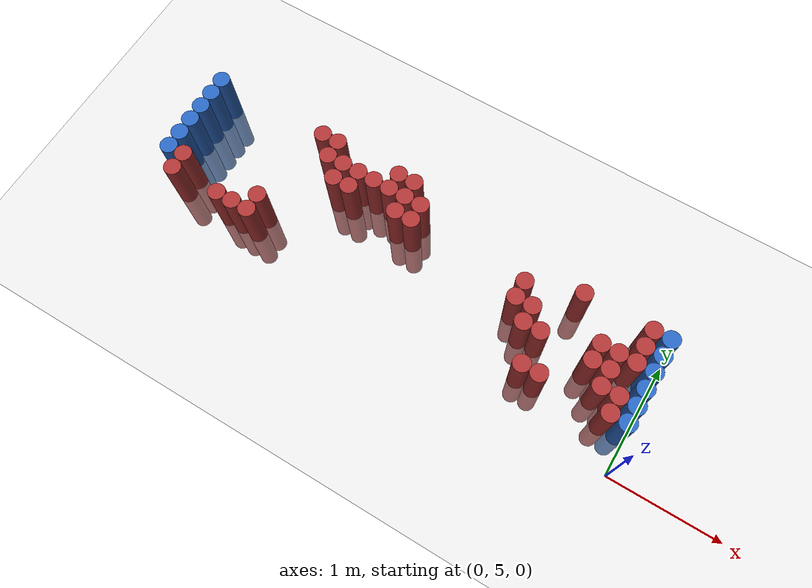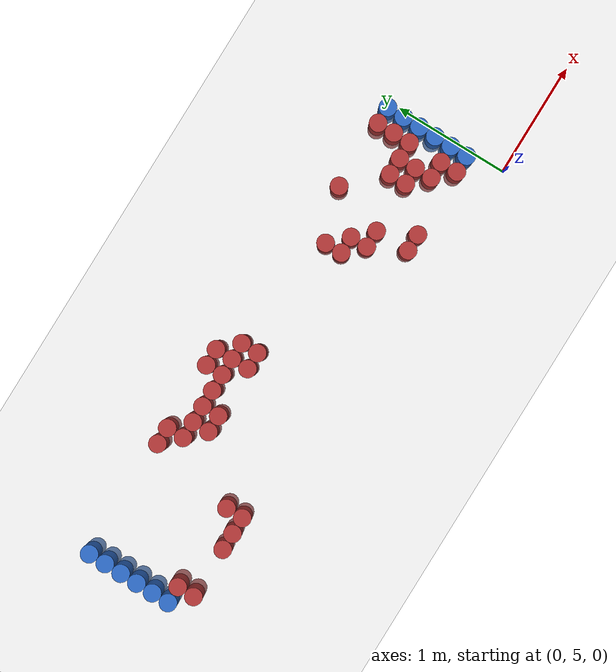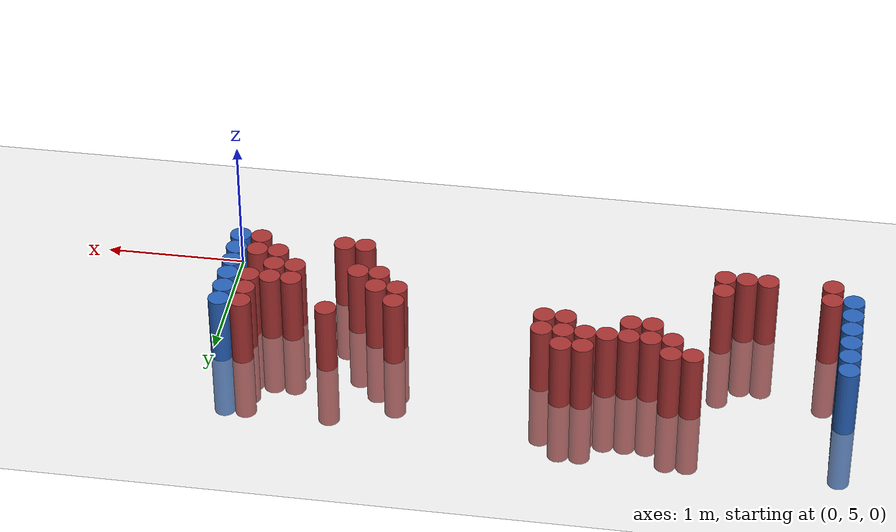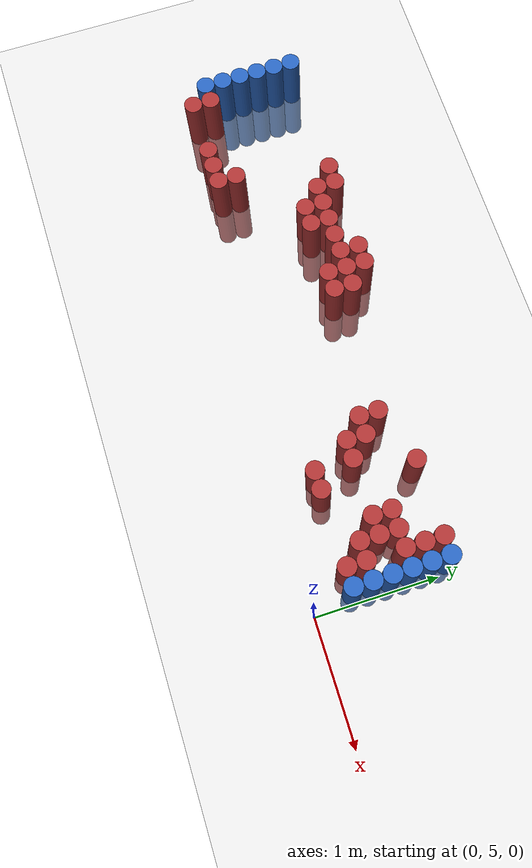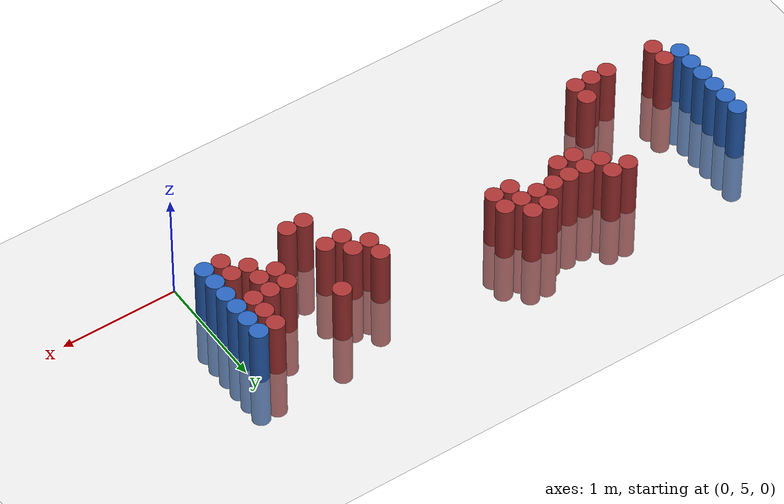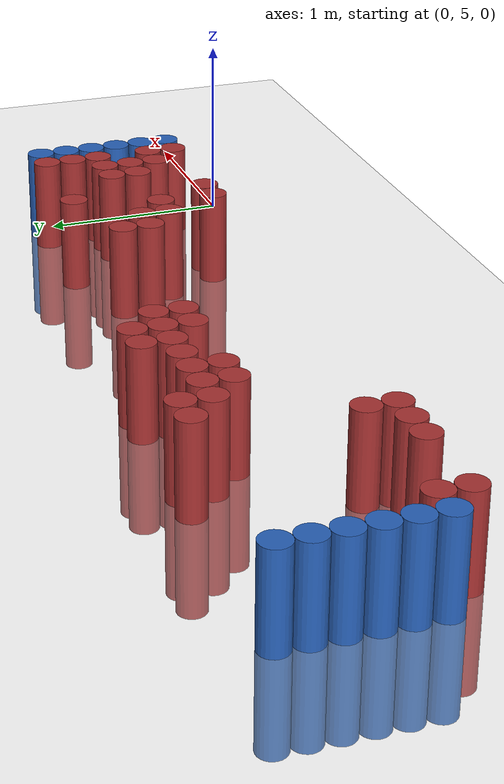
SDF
<sdf version="1.6">
 <world name="default">
  <model name="ground_plane">
   <static>1</static>
   <link name="link">
    <collision name="collision">
     <geometry><plane><normal>0 0 1</normal><size>100 100</size></plane></geometry>
     <surface><friction><ode><mu>100</mu><mu2>50</mu2></ode></friction></surface>
    </collision>
    <visual name="visual">
     <cast_shadows>0</cast_shadows>
     <geometry><plane><normal>0 0 1</normal><size>100 100</size></plane></geometry>
     <material>
      <script><uri>file://media/materials/scripts/gazebo.material</uri><name>Gazebo/Grey</name></script>
     </material>
    </visual>
   </link>
  </model>
  <model name="unit_cylinder_98">
   <static>1</static>
   <pose>-4.425000 5.475000 0.000000 0.000000 0.000000 0.000000</pose>
   <link name="link">
    <inertial>
     <mass>1</mass>
     <inertia><ixx>0.145833</ixx><ixy>0</ixy><ixz>0</ixz><iyy>0.145833</iyy><iyz>0</iyz><izz>0.125</izz></inertia>
    </inertial>
    <collision name="collision">
     <geometry><cylinder><radius>0.075000</radius><length>1</length></cylinder></geometry>
    </collision>
    <visual name="visual">
     <geometry><cylinder><radius>0.075000</radius><length>1</length></cylinder></geometry>
     <material>
      <ambient>0.152000 0.379000 0.720000 1</ambient>
      <diffuse>0.152000 0.379000 0.720000 1</diffuse>
     </material>
     <material>
      <script><name>Gazebo/Grey</name><uri>file://media/materials/scripts/gazebo.material</uri></script>
     </material>
    </visual>
   </link>
  </model>
  <model name="unit_cylinder_99">
   <static>1</static>
   <pose>-4.425000 5.625000 0.000000 0.000000 0.000000 0.000000</pose>
   <link name="link">
    <inertial>
     <mass>1</mass>
     <inertia><ixx>0.145833</ixx><ixy>0</ixy><ixz>0</ixz><iyy>0.145833</iyy><iyz>0</iyz><izz>0.125</izz></inertia>
    </inertial>
    <collision name="collision">
     <geometry><cylinder><radius>0.075000</radius><length>1</length></cylinder></geometry>
    </collision>
    <visual name="visual">
     <geometry><cylinder><radius>0.075000</radius><length>1</length></cylinder></geometry>
     <material>
      <ambient>0.152000 0.379000 0.720000 1</ambient>
      <diffuse>0.152000 0.379000 0.720000 1</diffuse>
     </material>
     <material>
      <script><name>Gazebo/Grey</name><uri>file://media/materials/scripts/gazebo.material</uri></script>
     </material>
    </visual>
   </link>
  </model>
  <model name="unit_cylinder_100">
   <static>1</static>
   <pose>-4.425000 5.775000 0.000000 0.000000 0.000000 0.000000</pose>
   <link name="link">
    <inertial>
     <mass>1</mass>
     <inertia><ixx>0.145833</ixx><ixy>0</ixy><ixz>0</ixz><iyy>0.145833</iyy><iyz>0</iyz><izz>0.125</izz></inertia>
    </inertial>
    <collision name="collision">
     <geometry><cylinder><radius>0.075000</radius><length>1</length></cylinder></geometry>
    </collision>
    <visual name="visual">
     <geometry><cylinder><radius>0.075000</radius><length>1</length></cylinder></geometry>
     <material>
      <ambient>0.152000 0.379000 0.720000 1</ambient>
      <diffuse>0.152000 0.379000 0.720000 1</diffuse>
     </material>
     <material>
      <script><name>Gazebo/Grey</name><uri>file://media/materials/scripts/gazebo.material</uri></script>
     </material>
    </visual>
   </link>
  </model>
  <model name="unit_cylinder_101">
   <static>1</static>
   <pose>-4.425000 5.925000 0.000000 0.000000 0.000000 0.000000</pose>
   <link name="link">
    <inertial>
     <mass>1</mass>
     <inertia><ixx>0.145833</ixx><ixy>0</ixy><ixz>0</ixz><iyy>0.145833</iyy><iyz>0</iyz><izz>0.125</izz></inertia>
    </inertial>
    <collision name="collision">
     <geometry><cylinder><radius>0.075000</radius><length>1</length></cylinder></geometry>
    </collision>
    <visual name="visual">
     <geometry><cylinder><radius>0.075000</radius><length>1</length></cylinder></geometry>
     <material>
      <ambient>0.152000 0.379000 0.720000 1</ambient>
      <diffuse>0.152000 0.379000 0.720000 1</diffuse>
     </material>
     <material>
      <script><name>Gazebo/Grey</name><uri>file://media/materials/scripts/gazebo.material</uri></script>
     </material>
    </visual>
   </link>
  </model>
  <model name="unit_cylinder_102">
   <static>1</static>
   <pose>-4.425000 6.075000 0.000000 0.000000 0.000000 0.000000</pose>
   <link name="link">
    <inertial>
     <mass>1</mass>
     <inertia><ixx>0.145833</ixx><ixy>0</ixy><ixz>0</ixz><iyy>0.145833</iyy><iyz>0</iyz><izz>0.125</izz></inertia>
    </inertial>
    <collision name="collision">
     <geometry><cylinder><radius>0.075000</radius><length>1</length></cylinder></geometry>
    </collision>
    <visual name="visual">
     <geometry><cylinder><radius>0.075000</radius><length>1</length></cylinder></geometry>
     <material>
      <ambient>0.152000 0.379000 0.720000 1</ambient>
      <diffuse>0.152000 0.379000 0.720000 1</diffuse>
     </material>
     <material>
      <script><name>Gazebo/Grey</name><uri>file://media/materials/scripts/gazebo.material</uri></script>
     </material>
    </visual>
   </link>
  </model>
  <model name="unit_cylinder_103">
   <static>1</static>
   <pose>-4.425000 6.225000 0.000000 0.000000 0.000000 0.000000</pose>
   <link name="link">
    <inertial>
     <mass>1</mass>
     <inertia><ixx>0.145833</ixx><ixy>0</ixy><ixz>0</ixz><iyy>0.145833</iyy><iyz>0</iyz><izz>0.125</izz></inertia>
    </inertial>
    <collision name="collision">
     <geometry><cylinder><radius>0.075000</radius><length>1</length></cylinder></geometry>
    </collision>
    <visual name="visual">
     <geometry><cylinder><radius>0.075000</radius><length>1</length></cylinder></geometry>
     <material>
      <ambient>0.152000 0.379000 0.720000 1</ambient>
      <diffuse>0.152000 0.379000 0.720000 1</diffuse>
     </material>
     <material>
      <script><name>Gazebo/Grey</name><uri>file://media/materials/scripts/gazebo.material</uri></script>
     </material>
    </visual>
   </link>
  </model>
  <model name="unit_cylinder_127">
   <static>1</static>
   <pose>-4.275000 5.325000 0.000000 0.000000 0.000000 0.000000</pose>
   <link name="link">
    <inertial>
     <mass>1</mass>
     <inertia><ixx>0.145833</ixx><ixy>0</ixy><ixz>0</ixz><iyy>0.145833</iyy><iyz>0</iyz><izz>0.125</izz></inertia>
    </inertial>
    <collision name="collision">
     <geometry><cylinder><radius>0.075000</radius><length>1</length></cylinder></geometry>
    </collision>
    <visual name="visual">
     <geometry><cylinder><radius>0.075000</radius><length>1</length></cylinder></geometry>
     <material>
      <ambient>0.648000 0.192000 0.192000 1</ambient>
      <diffuse>0.648000 0.192000 0.192000 1</diffuse>
     </material>
     <material>
      <script><name>Gazebo/Grey</name><uri>file://media/materials/scripts/gazebo.material</uri></script>
     </material>
    </visual>
   </link>
  </model>
  <model name="unit_cylinder_128">
   <static>1</static>
   <pose>-4.275000 5.475000 0.000000 0.000000 0.000000 0.000000</pose>
   <link name="link">
    <inertial>
     <mass>1</mass>
     <inertia><ixx>0.145833</ixx><ixy>0</ixy><ixz>0</ixz><iyy>0.145833</iyy><iyz>0</iyz><izz>0.125</izz></inertia>
    </inertial>
    <collision name="collision">
     <geometry><cylinder><radius>0.075000</radius><length>1</length></cylinder></geometry>
    </collision>
    <visual name="visual">
     <geometry><cylinder><radius>0.075000</radius><length>1</length></cylinder></geometry>
     <material>
      <ambient>0.648000 0.192000 0.192000 1</ambient>
      <diffuse>0.648000 0.192000 0.192000 1</diffuse>
     </material>
     <material>
      <script><name>Gazebo/Grey</name><uri>file://media/materials/scripts/gazebo.material</uri></script>
     </material>
    </visual>
   </link>
  </model>
  <model name="unit_cylinder_156">
   <static>1</static>
   <pose>-3.825000 5.325000 0.000000 0.000000 0.000000 0.000000</pose>
   <link name="link">
    <inertial>
     <mass>1</mass>
     <inertia><ixx>0.145833</ixx><ixy>0</ixy><ixz>0</ixz><iyy>0.145833</iyy><iyz>0</iyz><izz>0.125</izz></inertia>
    </inertial>
    <collision name="collision">
     <geometry><cylinder><radius>0.075000</radius><length>1</length></cylinder></geometry>
    </collision>
    <visual name="visual">
     <geometry><cylinder><radius>0.075000</radius><length>1</length></cylinder></geometry>
     <material>
      <ambient>0.648000 0.192000 0.192000 1</ambient>
      <diffuse>0.648000 0.192000 0.192000 1</diffuse>
     </material>
     <material>
      <script><name>Gazebo/Grey</name><uri>file://media/materials/scripts/gazebo.material</uri></script>
     </material>
    </visual>
   </link>
  </model>
  <model name="unit_cylinder_164">
   <static>1</static>
   <pose>-3.675000 5.325000 0.000000 0.000000 0.000000 0.000000</pose>
   <link name="link">
    <inertial>
     <mass>1</mass>
     <inertia><ixx>0.145833</ixx><ixy>0</ixy><ixz>0</ixz><iyy>0.145833</iyy><iyz>0</iyz><izz>0.125</izz></inertia>
    </inertial>
    <collision name="collision">
     <geometry><cylinder><radius>0.075000</radius><length>1</length></cylinder></geometry>
    </collision>
    <visual name="visual">
     <geometry><cylinder><radius>0.075000</radius><length>1</length></cylinder></geometry>
     <material>
      <ambient>0.648000 0.192000 0.192000 1</ambient>
      <diffuse>0.648000 0.192000 0.192000 1</diffuse>
     </material>
     <material>
      <script><name>Gazebo/Grey</name><uri>file://media/materials/scripts/gazebo.material</uri></script>
     </material>
    </visual>
   </link>
  </model>
  <model name="unit_cylinder_167">
   <static>1</static>
   <pose>-3.525000 5.325000 0.000000 0.000000 0.000000 0.000000</pose>
   <link name="link">
    <inertial>
     <mass>1</mass>
     <inertia><ixx>0.145833</ixx><ixy>0</ixy><ixz>0</ixz><iyy>0.145833</iyy><iyz>0</iyz><izz>0.125</izz></inertia>
    </inertial>
    <collision name="collision">
     <geometry><cylinder><radius>0.075000</radius><length>1</length></cylinder></geometry>
    </collision>
    <visual name="visual">
     <geometry><cylinder><radius>0.075000</radius><length>1</length></cylinder></geometry>
     <material>
      <ambient>0.648000 0.192000 0.192000 1</ambient>
      <diffuse>0.648000 0.192000 0.192000 1</diffuse>
     </material>
     <material>
      <script><name>Gazebo/Grey</name><uri>file://media/materials/scripts/gazebo.material</uri></script>
     </material>
    </visual>
   </link>
  </model>
  <model name="unit_cylinder_168">
   <static>1</static>
   <pose>-3.525000 5.475000 0.000000 0.000000 0.000000 0.000000</pose>
   <link name="link">
    <inertial>
     <mass>1</mass>
     <inertia><ixx>0.145833</ixx><ixy>0</ixy><ixz>0</ixz><iyy>0.145833</iyy><iyz>0</iyz><izz>0.125</izz></inertia>
    </inertial>
    <collision name="collision">
     <geometry><cylinder><radius>0.075000</radius><length>1</length></cylinder></geometry>
    </collision>
    <visual name="visual">
     <geometry><cylinder><radius>0.075000</radius><length>1</length></cylinder></geometry>
     <material>
      <ambient>0.648000 0.192000 0.192000 1</ambient>
      <diffuse>0.648000 0.192000 0.192000 1</diffuse>
     </material>
     <material>
      <script><name>Gazebo/Grey</name><uri>file://media/materials/scripts/gazebo.material</uri></script>
     </material>
    </visual>
   </link>
  </model>
  <model name="unit_cylinder_182">
   <static>1</static>
   <pose>-3.375000 6.225000 0.000000 0.000000 0.000000 0.000000</pose>
   <link name="link">
    <inertial>
     <mass>1</mass>
     <inertia><ixx>0.145833</ixx><ixy>0</ixy><ixz>0</ixz><iyy>0.145833</iyy><iyz>0</iyz><izz>0.125</izz></inertia>
    </inertial>
    <collision name="collision">
     <geometry><cylinder><radius>0.075000</radius><length>1</length></cylinder></geometry>
    </collision>
    <visual name="visual">
     <geometry><cylinder><radius>0.075000</radius><length>1</length></cylinder></geometry>
     <material>
      <ambient>0.648000 0.192000 0.192000 1</ambient>
      <diffuse>0.648000 0.192000 0.192000 1</diffuse>
     </material>
     <material>
      <script><name>Gazebo/Grey</name><uri>file://media/materials/scripts/gazebo.material</uri></script>
     </material>
    </visual>
   </link>
  </model>
  <model name="unit_cylinder_192">
   <static>1</static>
   <pose>-3.225000 6.075000 0.000000 0.000000 0.000000 0.000000</pose>
   <link name="link">
    <inertial>
     <mass>1</mass>
     <inertia><ixx>0.145833</ixx><ixy>0</ixy><ixz>0</ixz><iyy>0.145833</iyy><iyz>0</iyz><izz>0.125</izz></inertia>
    </inertial>
    <collision name="collision">
     <geometry><cylinder><radius>0.075000</radius><length>1</length></cylinder></geometry>
    </collision>
    <visual name="visual">
     <geometry><cylinder><radius>0.075000</radius><length>1</length></cylinder></geometry>
     <material>
      <ambient>0.648000 0.192000 0.192000 1</ambient>
      <diffuse>0.648000 0.192000 0.192000 1</diffuse>
     </material>
     <material>
      <script><name>Gazebo/Grey</name><uri>file://media/materials/scripts/gazebo.material</uri></script>
     </material>
    </visual>
   </link>
  </model>
  <model name="unit_cylinder_193">
   <static>1</static>
   <pose>-3.225000 6.225000 0.000000 0.000000 0.000000 0.000000</pose>
   <link name="link">
    <inertial>
     <mass>1</mass>
     <inertia><ixx>0.145833</ixx><ixy>0</ixy><ixz>0</ixz><iyy>0.145833</iyy><iyz>0</iyz><izz>0.125</izz></inertia>
    </inertial>
    <collision name="collision">
     <geometry><cylinder><radius>0.075000</radius><length>1</length></cylinder></geometry>
    </collision>
    <visual name="visual">
     <geometry><cylinder><radius>0.075000</radius><length>1</length></cylinder></geometry>
     <material>
      <ambient>0.648000 0.192000 0.192000 1</ambient>
      <diffuse>0.648000 0.192000 0.192000 1</diffuse>
     </material>
     <material>
      <script><name>Gazebo/Grey</name><uri>file://media/materials/scripts/gazebo.material</uri></script>
     </material>
    </visual>
   </link>
  </model>
  <model name="unit_cylinder_196">
   <static>1</static>
   <pose>-3.075000 5.925000 0.000000 0.000000 0.000000 0.000000</pose>
   <link name="link">
    <inertial>
     <mass>1</mass>
     <inertia><ixx>0.145833</ixx><ixy>0</ixy><ixz>0</ixz><iyy>0.145833</iyy><iyz>0</iyz><izz>0.125</izz></inertia>
    </inertial>
    <collision name="collision">
     <geometry><cylinder><radius>0.075000</radius><length>1</length></cylinder></geometry>
    </collision>
    <visual name="visual">
     <geometry><cylinder><radius>0.075000</radius><length>1</length></cylinder></geometry>
     <material>
      <ambient>0.648000 0.192000 0.192000 1</ambient>
      <diffuse>0.648000 0.192000 0.192000 1</diffuse>
     </material>
     <material>
      <script><name>Gazebo/Grey</name><uri>file://media/materials/scripts/gazebo.material</uri></script>
     </material>
    </visual>
   </link>
  </model>
  <model name="unit_cylinder_197">
   <static>1</static>
   <pose>-3.075000 6.075000 0.000000 0.000000 0.000000 0.000000</pose>
   <link name="link">
    <inertial>
     <mass>1</mass>
     <inertia><ixx>0.145833</ixx><ixy>0</ixy><ixz>0</ixz><iyy>0.145833</iyy><iyz>0</iyz><izz>0.125</izz></inertia>
    </inertial>
    <collision name="collision">
     <geometry><cylinder><radius>0.075000</radius><length>1</length></cylinder></geometry>
    </collision>
    <visual name="visual">
     <geometry><cylinder><radius>0.075000</radius><length>1</length></cylinder></geometry>
     <material>
      <ambient>0.648000 0.192000 0.192000 1</ambient>
      <diffuse>0.648000 0.192000 0.192000 1</diffuse>
     </material>
     <material>
      <script><name>Gazebo/Grey</name><uri>file://media/materials/scripts/gazebo.material</uri></script>
     </material>
    </visual>
   </link>
  </model>
  <model name="unit_cylinder_204">
   <static>1</static>
   <pose>-2.925000 5.925000 0.000000 0.000000 0.000000 0.000000</pose>
   <link name="link">
    <inertial>
     <mass>1</mass>
     <inertia><ixx>0.145833</ixx><ixy>0</ixy><ixz>0</ixz><iyy>0.145833</iyy><iyz>0</iyz><izz>0.125</izz></inertia>
    </inertial>
    <collision name="collision">
     <geometry><cylinder><radius>0.075000</radius><length>1</length></cylinder></geometry>
    </collision>
    <visual name="visual">
     <geometry><cylinder><radius>0.075000</radius><length>1</length></cylinder></geometry>
     <material>
      <ambient>0.648000 0.192000 0.192000 1</ambient>
      <diffuse>0.648000 0.192000 0.192000 1</diffuse>
     </material>
     <material>
      <script><name>Gazebo/Grey</name><uri>file://media/materials/scripts/gazebo.material</uri></script>
     </material>
    </visual>
   </link>
  </model>
  <model name="unit_cylinder_205">
   <static>1</static>
   <pose>-2.925000 6.075000 0.000000 0.000000 0.000000 0.000000</pose>
   <link name="link">
    <inertial>
     <mass>1</mass>
     <inertia><ixx>0.145833</ixx><ixy>0</ixy><ixz>0</ixz><iyy>0.145833</iyy><iyz>0</iyz><izz>0.125</izz></inertia>
    </inertial>
    <collision name="collision">
     <geometry><cylinder><radius>0.075000</radius><length>1</length></cylinder></geometry>
    </collision>
    <visual name="visual">
     <geometry><cylinder><radius>0.075000</radius><length>1</length></cylinder></geometry>
     <material>
      <ambient>0.648000 0.192000 0.192000 1</ambient>
      <diffuse>0.648000 0.192000 0.192000 1</diffuse>
     </material>
     <material>
      <script><name>Gazebo/Grey</name><uri>file://media/materials/scripts/gazebo.material</uri></script>
     </material>
    </visual>
   </link>
  </model>
  <model name="unit_cylinder_216">
   <static>1</static>
   <pose>-2.775000 6.075000 0.000000 0.000000 0.000000 0.000000</pose>
   <link name="link">
    <inertial>
     <mass>1</mass>
     <inertia><ixx>0.145833</ixx><ixy>0</ixy><ixz>0</ixz><iyy>0.145833</iyy><iyz>0</iyz><izz>0.125</izz></inertia>
    </inertial>
    <collision name="collision">
     <geometry><cylinder><radius>0.075000</radius><length>1</length></cylinder></geometry>
    </collision>
    <visual name="visual">
     <geometry><cylinder><radius>0.075000</radius><length>1</length></cylinder></geometry>
     <material>
      <ambient>0.648000 0.192000 0.192000 1</ambient>
      <diffuse>0.648000 0.192000 0.192000 1</diffuse>
     </material>
     <material>
      <script><name>Gazebo/Grey</name><uri>file://media/materials/scripts/gazebo.material</uri></script>
     </material>
    </visual>
   </link>
  </model>
  <model name="unit_cylinder_226">
   <static>1</static>
   <pose>-2.625000 6.075000 0.000000 0.000000 0.000000 0.000000</pose>
   <link name="link">
    <inertial>
     <mass>1</mass>
     <inertia><ixx>0.145833</ixx><ixy>0</ixy><ixz>0</ixz><iyy>0.145833</iyy><iyz>0</iyz><izz>0.125</izz></inertia>
    </inertial>
    <collision name="collision">
     <geometry><cylinder><radius>0.075000</radius><length>1</length></cylinder></geometry>
    </collision>
    <visual name="visual">
     <geometry><cylinder><radius>0.075000</radius><length>1</length></cylinder></geometry>
     <material>
      <ambient>0.648000 0.192000 0.192000 1</ambient>
      <diffuse>0.648000 0.192000 0.192000 1</diffuse>
     </material>
     <material>
      <script><name>Gazebo/Grey</name><uri>file://media/materials/scripts/gazebo.material</uri></script>
     </material>
    </visual>
   </link>
  </model>
  <model name="unit_cylinder_227">
   <static>1</static>
   <pose>-2.625000 6.225000 0.000000 0.000000 0.000000 0.000000</pose>
   <link name="link">
    <inertial>
     <mass>1</mass>
     <inertia><ixx>0.145833</ixx><ixy>0</ixy><ixz>0</ixz><iyy>0.145833</iyy><iyz>0</iyz><izz>0.125</izz></inertia>
    </inertial>
    <collision name="collision">
     <geometry><cylinder><radius>0.075000</radius><length>1</length></cylinder></geometry>
    </collision>
    <visual name="visual">
     <geometry><cylinder><radius>0.075000</radius><length>1</length></cylinder></geometry>
     <material>
      <ambient>0.648000 0.192000 0.192000 1</ambient>
      <diffuse>0.648000 0.192000 0.192000 1</diffuse>
     </material>
     <material>
      <script><name>Gazebo/Grey</name><uri>file://media/materials/scripts/gazebo.material</uri></script>
     </material>
    </visual>
   </link>
  </model>
  <model name="unit_cylinder_232">
   <static>1</static>
   <pose>-2.475000 5.925000 0.000000 0.000000 0.000000 0.000000</pose>
   <link name="link">
    <inertial>
     <mass>1</mass>
     <inertia><ixx>0.145833</ixx><ixy>0</ixy><ixz>0</ixz><iyy>0.145833</iyy><iyz>0</iyz><izz>0.125</izz></inertia>
    </inertial>
    <collision name="collision">
     <geometry><cylinder><radius>0.075000</radius><length>1</length></cylinder></geometry>
    </collision>
    <visual name="visual">
     <geometry><cylinder><radius>0.075000</radius><length>1</length></cylinder></geometry>
     <material>
      <ambient>0.648000 0.192000 0.192000 1</ambient>
      <diffuse>0.648000 0.192000 0.192000 1</diffuse>
     </material>
     <material>
      <script><name>Gazebo/Grey</name><uri>file://media/materials/scripts/gazebo.material</uri></script>
     </material>
    </visual>
   </link>
  </model>
  <model name="unit_cylinder_233">
   <static>1</static>
   <pose>-2.475000 6.075000 0.000000 0.000000 0.000000 0.000000</pose>
   <link name="link">
    <inertial>
     <mass>1</mass>
     <inertia><ixx>0.145833</ixx><ixy>0</ixy><ixz>0</ixz><iyy>0.145833</iyy><iyz>0</iyz><izz>0.125</izz></inertia>
    </inertial>
    <collision name="collision">
     <geometry><cylinder><radius>0.075000</radius><length>1</length></cylinder></geometry>
    </collision>
    <visual name="visual">
     <geometry><cylinder><radius>0.075000</radius><length>1</length></cylinder></geometry>
     <material>
      <ambient>0.648000 0.192000 0.192000 1</ambient>
      <diffuse>0.648000 0.192000 0.192000 1</diffuse>
     </material>
     <material>
      <script><name>Gazebo/Grey</name><uri>file://media/materials/scripts/gazebo.material</uri></script>
     </material>
    </visual>
   </link>
  </model>
  <model name="unit_cylinder_234">
   <static>1</static>
   <pose>-2.475000 6.225000 0.000000 0.000000 0.000000 0.000000</pose>
   <link name="link">
    <inertial>
     <mass>1</mass>
     <inertia><ixx>0.145833</ixx><ixy>0</ixy><ixz>0</ixz><iyy>0.145833</iyy><iyz>0</iyz><izz>0.125</izz></inertia>
    </inertial>
    <collision name="collision">
     <geometry><cylinder><radius>0.075000</radius><length>1</length></cylinder></geometry>
    </collision>
    <visual name="visual">
     <geometry><cylinder><radius>0.075000</radius><length>1</length></cylinder></geometry>
     <material>
      <ambient>0.648000 0.192000 0.192000 1</ambient>
      <diffuse>0.648000 0.192000 0.192000 1</diffuse>
     </material>
     <material>
      <script><name>Gazebo/Grey</name><uri>file://media/materials/scripts/gazebo.material</uri></script>
     </material>
    </visual>
   </link>
  </model>
  <model name="unit_cylinder_239">
   <static>1</static>
   <pose>-2.325000 5.925000 0.000000 0.000000 0.000000 0.000000</pose>
   <link name="link">
    <inertial>
     <mass>1</mass>
     <inertia><ixx>0.145833</ixx><ixy>0</ixy><ixz>0</ixz><iyy>0.145833</iyy><iyz>0</iyz><izz>0.125</izz></inertia>
    </inertial>
    <collision name="collision">
     <geometry><cylinder><radius>0.075000</radius><length>1</length></cylinder></geometry>
    </collision>
    <visual name="visual">
     <geometry><cylinder><radius>0.075000</radius><length>1</length></cylinder></geometry>
     <material>
      <ambient>0.648000 0.192000 0.192000 1</ambient>
      <diffuse>0.648000 0.192000 0.192000 1</diffuse>
     </material>
     <material>
      <script><name>Gazebo/Grey</name><uri>file://media/materials/scripts/gazebo.material</uri></script>
     </material>
    </visual>
   </link>
  </model>
  <model name="unit_cylinder_240">
   <static>1</static>
   <pose>-2.325000 6.075000 0.000000 0.000000 0.000000 0.000000</pose>
   <link name="link">
    <inertial>
     <mass>1</mass>
     <inertia><ixx>0.145833</ixx><ixy>0</ixy><ixz>0</ixz><iyy>0.145833</iyy><iyz>0</iyz><izz>0.125</izz></inertia>
    </inertial>
    <collision name="collision">
     <geometry><cylinder><radius>0.075000</radius><length>1</length></cylinder></geometry>
    </collision>
    <visual name="visual">
     <geometry><cylinder><radius>0.075000</radius><length>1</length></cylinder></geometry>
     <material>
      <ambient>0.648000 0.192000 0.192000 1</ambient>
      <diffuse>0.648000 0.192000 0.192000 1</diffuse>
     </material>
     <material>
      <script><name>Gazebo/Grey</name><uri>file://media/materials/scripts/gazebo.material</uri></script>
     </material>
    </visual>
   </link>
  </model>
  <model name="unit_cylinder_248">
   <static>1</static>
   <pose>-1.275000 5.775000 0.000000 0.000000 0.000000 0.000000</pose>
   <link name="link">
    <inertial>
     <mass>1</mass>
     <inertia><ixx>0.145833</ixx><ixy>0</ixy><ixz>0</ixz><iyy>0.145833</iyy><iyz>0</iyz><izz>0.125</izz></inertia>
    </inertial>
    <collision name="collision">
     <geometry><cylinder><radius>0.075000</radius><length>1</length></cylinder></geometry>
    </collision>
    <visual name="visual">
     <geometry><cylinder><radius>0.075000</radius><length>1</length></cylinder></geometry>
     <material>
      <ambient>0.648000 0.192000 0.192000 1</ambient>
      <diffuse>0.648000 0.192000 0.192000 1</diffuse>
     </material>
     <material>
      <script><name>Gazebo/Grey</name><uri>file://media/materials/scripts/gazebo.material</uri></script>
     </material>
    </visual>
   </link>
  </model>
  <model name="unit_cylinder_249">
   <static>1</static>
   <pose>-1.275000 5.925000 0.000000 0.000000 0.000000 0.000000</pose>
   <link name="link">
    <inertial>
     <mass>1</mass>
     <inertia><ixx>0.145833</ixx><ixy>0</ixy><ixz>0</ixz><iyy>0.145833</iyy><iyz>0</iyz><izz>0.125</izz></inertia>
    </inertial>
    <collision name="collision">
     <geometry><cylinder><radius>0.075000</radius><length>1</length></cylinder></geometry>
    </collision>
    <visual name="visual">
     <geometry><cylinder><radius>0.075000</radius><length>1</length></cylinder></geometry>
     <material>
      <ambient>0.648000 0.192000 0.192000 1</ambient>
      <diffuse>0.648000 0.192000 0.192000 1</diffuse>
     </material>
     <material>
      <script><name>Gazebo/Grey</name><uri>file://media/materials/scripts/gazebo.material</uri></script>
     </material>
    </visual>
   </link>
  </model>
  <model name="unit_cylinder_260">
   <static>1</static>
   <pose>-1.125000 5.625000 0.000000 0.000000 0.000000 0.000000</pose>
   <link name="link">
    <inertial>
     <mass>1</mass>
     <inertia><ixx>0.145833</ixx><ixy>0</ixy><ixz>0</ixz><iyy>0.145833</iyy><iyz>0</iyz><izz>0.125</izz></inertia>
    </inertial>
    <collision name="collision">
     <geometry><cylinder><radius>0.075000</radius><length>1</length></cylinder></geometry>
    </collision>
    <visual name="visual">
     <geometry><cylinder><radius>0.075000</radius><length>1</length></cylinder></geometry>
     <material>
      <ambient>0.648000 0.192000 0.192000 1</ambient>
      <diffuse>0.648000 0.192000 0.192000 1</diffuse>
     </material>
     <material>
      <script><name>Gazebo/Grey</name><uri>file://media/materials/scripts/gazebo.material</uri></script>
     </material>
    </visual>
   </link>
  </model>
  <model name="unit_cylinder_261">
   <static>1</static>
   <pose>-1.125000 5.775000 0.000000 0.000000 0.000000 0.000000</pose>
   <link name="link">
    <inertial>
     <mass>1</mass>
     <inertia><ixx>0.145833</ixx><ixy>0</ixy><ixz>0</ixz><iyy>0.145833</iyy><iyz>0</iyz><izz>0.125</izz></inertia>
    </inertial>
    <collision name="collision">
     <geometry><cylinder><radius>0.075000</radius><length>1</length></cylinder></geometry>
    </collision>
    <visual name="visual">
     <geometry><cylinder><radius>0.075000</radius><length>1</length></cylinder></geometry>
     <material>
      <ambient>0.648000 0.192000 0.192000 1</ambient>
      <diffuse>0.648000 0.192000 0.192000 1</diffuse>
     </material>
     <material>
      <script><name>Gazebo/Grey</name><uri>file://media/materials/scripts/gazebo.material</uri></script>
     </material>
    </visual>
   </link>
  </model>
  <model name="unit_cylinder_270">
   <static>1</static>
   <pose>-0.975000 5.325000 0.000000 0.000000 0.000000 0.000000</pose>
   <link name="link">
    <inertial>
     <mass>1</mass>
     <inertia><ixx>0.145833</ixx><ixy>0</ixy><ixz>0</ixz><iyy>0.145833</iyy><iyz>0</iyz><izz>0.125</izz></inertia>
    </inertial>
    <collision name="collision">
     <geometry><cylinder><radius>0.075000</radius><length>1</length></cylinder></geometry>
    </collision>
    <visual name="visual">
     <geometry><cylinder><radius>0.075000</radius><length>1</length></cylinder></geometry>
     <material>
      <ambient>0.648000 0.192000 0.192000 1</ambient>
      <diffuse>0.648000 0.192000 0.192000 1</diffuse>
     </material>
     <material>
      <script><name>Gazebo/Grey</name><uri>file://media/materials/scripts/gazebo.material</uri></script>
     </material>
    </visual>
   </link>
  </model>
  <model name="unit_cylinder_271">
   <static>1</static>
   <pose>-0.975000 5.625000 0.000000 0.000000 0.000000 0.000000</pose>
   <link name="link">
    <inertial>
     <mass>1</mass>
     <inertia><ixx>0.145833</ixx><ixy>0</ixy><ixz>0</ixz><iyy>0.145833</iyy><iyz>0</iyz><izz>0.125</izz></inertia>
    </inertial>
    <collision name="collision">
     <geometry><cylinder><radius>0.075000</radius><length>1</length></cylinder></geometry>
    </collision>
    <visual name="visual">
     <geometry><cylinder><radius>0.075000</radius><length>1</length></cylinder></geometry>
     <material>
      <ambient>0.648000 0.192000 0.192000 1</ambient>
      <diffuse>0.648000 0.192000 0.192000 1</diffuse>
     </material>
     <material>
      <script><name>Gazebo/Grey</name><uri>file://media/materials/scripts/gazebo.material</uri></script>
     </material>
    </visual>
   </link>
  </model>
  <model name="unit_cylinder_280">
   <static>1</static>
   <pose>-0.825000 5.325000 0.000000 0.000000 0.000000 0.000000</pose>
   <link name="link">
    <inertial>
     <mass>1</mass>
     <inertia><ixx>0.145833</ixx><ixy>0</ixy><ixz>0</ixz><iyy>0.145833</iyy><iyz>0</iyz><izz>0.125</izz></inertia>
    </inertial>
    <collision name="collision">
     <geometry><cylinder><radius>0.075000</radius><length>1</length></cylinder></geometry>
    </collision>
    <visual name="visual">
     <geometry><cylinder><radius>0.075000</radius><length>1</length></cylinder></geometry>
     <material>
      <ambient>0.648000 0.192000 0.192000 1</ambient>
      <diffuse>0.648000 0.192000 0.192000 1</diffuse>
     </material>
     <material>
      <script><name>Gazebo/Grey</name><uri>file://media/materials/scripts/gazebo.material</uri></script>
     </material>
    </visual>
   </link>
  </model>
  <model name="unit_cylinder_281">
   <static>1</static>
   <pose>-0.825000 6.075000 0.000000 0.000000 0.000000 0.000000</pose>
   <link name="link">
    <inertial>
     <mass>1</mass>
     <inertia><ixx>0.145833</ixx><ixy>0</ixy><ixz>0</ixz><iyy>0.145833</iyy><iyz>0</iyz><izz>0.125</izz></inertia>
    </inertial>
    <collision name="collision">
     <geometry><cylinder><radius>0.075000</radius><length>1</length></cylinder></geometry>
    </collision>
    <visual name="visual">
     <geometry><cylinder><radius>0.075000</radius><length>1</length></cylinder></geometry>
     <material>
      <ambient>0.648000 0.192000 0.192000 1</ambient>
      <diffuse>0.648000 0.192000 0.192000 1</diffuse>
     </material>
     <material>
      <script><name>Gazebo/Grey</name><uri>file://media/materials/scripts/gazebo.material</uri></script>
     </material>
    </visual>
   </link>
  </model>
  <model name="unit_cylinder_290">
   <static>1</static>
   <pose>-0.525000 5.625000 0.000000 0.000000 0.000000 0.000000</pose>
   <link name="link">
    <inertial>
     <mass>1</mass>
     <inertia><ixx>0.145833</ixx><ixy>0</ixy><ixz>0</ixz><iyy>0.145833</iyy><iyz>0</iyz><izz>0.125</izz></inertia>
    </inertial>
    <collision name="collision">
     <geometry><cylinder><radius>0.075000</radius><length>1</length></cylinder></geometry>
    </collision>
    <visual name="visual">
     <geometry><cylinder><radius>0.075000</radius><length>1</length></cylinder></geometry>
     <material>
      <ambient>0.648000 0.192000 0.192000 1</ambient>
      <diffuse>0.648000 0.192000 0.192000 1</diffuse>
     </material>
     <material>
      <script><name>Gazebo/Grey</name><uri>file://media/materials/scripts/gazebo.material</uri></script>
     </material>
    </visual>
   </link>
  </model>
  <model name="unit_cylinder_291">
   <static>1</static>
   <pose>-0.525000 5.775000 0.000000 0.000000 0.000000 0.000000</pose>
   <link name="link">
    <inertial>
     <mass>1</mass>
     <inertia><ixx>0.145833</ixx><ixy>0</ixy><ixz>0</ixz><iyy>0.145833</iyy><iyz>0</iyz><izz>0.125</izz></inertia>
    </inertial>
    <collision name="collision">
     <geometry><cylinder><radius>0.075000</radius><length>1</length></cylinder></geometry>
    </collision>
    <visual name="visual">
     <geometry><cylinder><radius>0.075000</radius><length>1</length></cylinder></geometry>
     <material>
      <ambient>0.648000 0.192000 0.192000 1</ambient>
      <diffuse>0.648000 0.192000 0.192000 1</diffuse>
     </material>
     <material>
      <script><name>Gazebo/Grey</name><uri>file://media/materials/scripts/gazebo.material</uri></script>
     </material>
    </visual>
   </link>
  </model>
  <model name="unit_cylinder_297">
   <static>1</static>
   <pose>-0.375000 5.475000 0.000000 0.000000 0.000000 0.000000</pose>
   <link name="link">
    <inertial>
     <mass>1</mass>
     <inertia><ixx>0.145833</ixx><ixy>0</ixy><ixz>0</ixz><iyy>0.145833</iyy><iyz>0</iyz><izz>0.125</izz></inertia>
    </inertial>
    <collision name="collision">
     <geometry><cylinder><radius>0.075000</radius><length>1</length></cylinder></geometry>
    </collision>
    <visual name="visual">
     <geometry><cylinder><radius>0.075000</radius><length>1</length></cylinder></geometry>
     <material>
      <ambient>0.648000 0.192000 0.192000 1</ambient>
      <diffuse>0.648000 0.192000 0.192000 1</diffuse>
     </material>
     <material>
      <script><name>Gazebo/Grey</name><uri>file://media/materials/scripts/gazebo.material</uri></script>
     </material>
    </visual>
   </link>
  </model>
  <model name="unit_cylinder_298">
   <static>1</static>
   <pose>-0.375000 5.625000 0.000000 0.000000 0.000000 0.000000</pose>
   <link name="link">
    <inertial>
     <mass>1</mass>
     <inertia><ixx>0.145833</ixx><ixy>0</ixy><ixz>0</ixz><iyy>0.145833</iyy><iyz>0</iyz><izz>0.125</izz></inertia>
    </inertial>
    <collision name="collision">
     <geometry><cylinder><radius>0.075000</radius><length>1</length></cylinder></geometry>
    </collision>
    <visual name="visual">
     <geometry><cylinder><radius>0.075000</radius><length>1</length></cylinder></geometry>
     <material>
      <ambient>0.648000 0.192000 0.192000 1</ambient>
      <diffuse>0.648000 0.192000 0.192000 1</diffuse>
     </material>
     <material>
      <script><name>Gazebo/Grey</name><uri>file://media/materials/scripts/gazebo.material</uri></script>
     </material>
    </visual>
   </link>
  </model>
  <model name="unit_cylinder_299">
   <static>1</static>
   <pose>-0.375000 5.775000 0.000000 0.000000 0.000000 0.000000</pose>
   <link name="link">
    <inertial>
     <mass>1</mass>
     <inertia><ixx>0.145833</ixx><ixy>0</ixy><ixz>0</ixz><iyy>0.145833</iyy><iyz>0</iyz><izz>0.125</izz></inertia>
    </inertial>
    <collision name="collision">
     <geometry><cylinder><radius>0.075000</radius><length>1</length></cylinder></geometry>
    </collision>
    <visual name="visual">
     <geometry><cylinder><radius>0.075000</radius><length>1</length></cylinder></geometry>
     <material>
      <ambient>0.648000 0.192000 0.192000 1</ambient>
      <diffuse>0.648000 0.192000 0.192000 1</diffuse>
     </material>
     <material>
      <script><name>Gazebo/Grey</name><uri>file://media/materials/scripts/gazebo.material</uri></script>
     </material>
    </visual>
   </link>
  </model>
  <model name="unit_cylinder_313">
   <static>1</static>
   <pose>-0.225000 5.325000 0.000000 0.000000 0.000000 0.000000</pose>
   <link name="link">
    <inertial>
     <mass>1</mass>
     <inertia><ixx>0.145833</ixx><ixy>0</ixy><ixz>0</ixz><iyy>0.145833</iyy><iyz>0</iyz><izz>0.125</izz></inertia>
    </inertial>
    <collision name="collision">
     <geometry><cylinder><radius>0.075000</radius><length>1</length></cylinder></geometry>
    </collision>
    <visual name="visual">
     <geometry><cylinder><radius>0.075000</radius><length>1</length></cylinder></geometry>
     <material>
      <ambient>0.648000 0.192000 0.192000 1</ambient>
      <diffuse>0.648000 0.192000 0.192000 1</diffuse>
     </material>
     <material>
      <script><name>Gazebo/Grey</name><uri>file://media/materials/scripts/gazebo.material</uri></script>
     </material>
    </visual>
   </link>
  </model>
  <model name="unit_cylinder_314">
   <static>1</static>
   <pose>-0.225000 5.475000 0.000000 0.000000 0.000000 0.000000</pose>
   <link name="link">
    <inertial>
     <mass>1</mass>
     <inertia><ixx>0.145833</ixx><ixy>0</ixy><ixz>0</ixz><iyy>0.145833</iyy><iyz>0</iyz><izz>0.125</izz></inertia>
    </inertial>
    <collision name="collision">
     <geometry><cylinder><radius>0.075000</radius><length>1</length></cylinder></geometry>
    </collision>
    <visual name="visual">
     <geometry><cylinder><radius>0.075000</radius><length>1</length></cylinder></geometry>
     <material>
      <ambient>0.648000 0.192000 0.192000 1</ambient>
      <diffuse>0.648000 0.192000 0.192000 1</diffuse>
     </material>
     <material>
      <script><name>Gazebo/Grey</name><uri>file://media/materials/scripts/gazebo.material</uri></script>
     </material>
    </visual>
   </link>
  </model>
  <model name="unit_cylinder_315">
   <static>1</static>
   <pose>-0.225000 5.775000 0.000000 0.000000 0.000000 0.000000</pose>
   <link name="link">
    <inertial>
     <mass>1</mass>
     <inertia><ixx>0.145833</ixx><ixy>0</ixy><ixz>0</ixz><iyy>0.145833</iyy><iyz>0</iyz><izz>0.125</izz></inertia>
    </inertial>
    <collision name="collision">
     <geometry><cylinder><radius>0.075000</radius><length>1</length></cylinder></geometry>
    </collision>
    <visual name="visual">
     <geometry><cylinder><radius>0.075000</radius><length>1</length></cylinder></geometry>
     <material>
      <ambient>0.648000 0.192000 0.192000 1</ambient>
      <diffuse>0.648000 0.192000 0.192000 1</diffuse>
     </material>
     <material>
      <script><name>Gazebo/Grey</name><uri>file://media/materials/scripts/gazebo.material</uri></script>
     </material>
    </visual>
   </link>
  </model>
  <model name="unit_cylinder_316">
   <static>1</static>
   <pose>-0.225000 5.925000 0.000000 0.000000 0.000000 0.000000</pose>
   <link name="link">
    <inertial>
     <mass>1</mass>
     <inertia><ixx>0.145833</ixx><ixy>0</ixy><ixz>0</ixz><iyy>0.145833</iyy><iyz>0</iyz><izz>0.125</izz></inertia>
    </inertial>
    <collision name="collision">
     <geometry><cylinder><radius>0.075000</radius><length>1</length></cylinder></geometry>
    </collision>
    <visual name="visual">
     <geometry><cylinder><radius>0.075000</radius><length>1</length></cylinder></geometry>
     <material>
      <ambient>0.648000 0.192000 0.192000 1</ambient>
      <diffuse>0.648000 0.192000 0.192000 1</diffuse>
     </material>
     <material>
      <script><name>Gazebo/Grey</name><uri>file://media/materials/scripts/gazebo.material</uri></script>
     </material>
    </visual>
   </link>
  </model>
  <model name="unit_cylinder_317">
   <static>1</static>
   <pose>-0.225000 6.075000 0.000000 0.000000 0.000000 0.000000</pose>
   <link name="link">
    <inertial>
     <mass>1</mass>
     <inertia><ixx>0.145833</ixx><ixy>0</ixy><ixz>0</ixz><iyy>0.145833</iyy><iyz>0</iyz><izz>0.125</izz></inertia>
    </inertial>
    <collision name="collision">
     <geometry><cylinder><radius>0.075000</radius><length>1</length></cylinder></geometry>
    </collision>
    <visual name="visual">
     <geometry><cylinder><radius>0.075000</radius><length>1</length></cylinder></geometry>
     <material>
      <ambient>0.648000 0.192000 0.192000 1</ambient>
      <diffuse>0.648000 0.192000 0.192000 1</diffuse>
     </material>
     <material>
      <script><name>Gazebo/Grey</name><uri>file://media/materials/scripts/gazebo.material</uri></script>
     </material>
    </visual>
   </link>
  </model>
  <model name="unit_cylinder_332">
   <static>1</static>
   <pose>-0.075000 5.325000 0.000000 0.000000 0.000000 0.000000</pose>
   <link name="link">
    <inertial>
     <mass>1</mass>
     <inertia><ixx>0.145833</ixx><ixy>0</ixy><ixz>0</ixz><iyy>0.145833</iyy><iyz>0</iyz><izz>0.125</izz></inertia>
    </inertial>
    <collision name="collision">
     <geometry><cylinder><radius>0.075000</radius><length>1</length></cylinder></geometry>
    </collision>
    <visual name="visual">
     <geometry><cylinder><radius>0.075000</radius><length>1</length></cylinder></geometry>
     <material>
      <ambient>0.152000 0.379000 0.720000 1</ambient>
      <diffuse>0.152000 0.379000 0.720000 1</diffuse>
     </material>
     <material>
      <script><name>Gazebo/Grey</name><uri>file://media/materials/scripts/gazebo.material</uri></script>
     </material>
    </visual>
   </link>
  </model>
  <model name="unit_cylinder_333">
   <static>1</static>
   <pose>-0.075000 5.475000 0.000000 0.000000 0.000000 0.000000</pose>
   <link name="link">
    <inertial>
     <mass>1</mass>
     <inertia><ixx>0.145833</ixx><ixy>0</ixy><ixz>0</ixz><iyy>0.145833</iyy><iyz>0</iyz><izz>0.125</izz></inertia>
    </inertial>
    <collision name="collision">
     <geometry><cylinder><radius>0.075000</radius><length>1</length></cylinder></geometry>
    </collision>
    <visual name="visual">
     <geometry><cylinder><radius>0.075000</radius><length>1</length></cylinder></geometry>
     <material>
      <ambient>0.152000 0.379000 0.720000 1</ambient>
      <diffuse>0.152000 0.379000 0.720000 1</diffuse>
     </material>
     <material>
      <script><name>Gazebo/Grey</name><uri>file://media/materials/scripts/gazebo.material</uri></script>
     </material>
    </visual>
   </link>
  </model>
  <model name="unit_cylinder_334">
   <static>1</static>
   <pose>-0.075000 5.625000 0.000000 0.000000 0.000000 0.000000</pose>
   <link name="link">
    <inertial>
     <mass>1</mass>
     <inertia><ixx>0.145833</ixx><ixy>0</ixy><ixz>0</ixz><iyy>0.145833</iyy><iyz>0</iyz><izz>0.125</izz></inertia>
    </inertial>
    <collision name="collision">
     <geometry><cylinder><radius>0.075000</radius><length>1</length></cylinder></geometry>
    </collision>
    <visual name="visual">
     <geometry><cylinder><radius>0.075000</radius><length>1</length></cylinder></geometry>
     <material>
      <ambient>0.152000 0.379000 0.720000 1</ambient>
      <diffuse>0.152000 0.379000 0.720000 1</diffuse>
     </material>
     <material>
      <script><name>Gazebo/Grey</name><uri>file://media/materials/scripts/gazebo.material</uri></script>
     </material>
    </visual>
   </link>
  </model>
  <model name="unit_cylinder_335">
   <static>1</static>
   <pose>-0.075000 5.775000 0.000000 0.000000 0.000000 0.000000</pose>
   <link name="link">
    <inertial>
     <mass>1</mass>
     <inertia><ixx>0.145833</ixx><ixy>0</ixy><ixz>0</ixz><iyy>0.145833</iyy><iyz>0</iyz><izz>0.125</izz></inertia>
    </inertial>
    <collision name="collision">
     <geometry><cylinder><radius>0.075000</radius><length>1</length></cylinder></geometry>
    </collision>
    <visual name="visual">
     <geometry><cylinder><radius>0.075000</radius><length>1</length></cylinder></geometry>
     <material>
      <ambient>0.152000 0.379000 0.720000 1</ambient>
      <diffuse>0.152000 0.379000 0.720000 1</diffuse>
     </material>
     <material>
      <script><name>Gazebo/Grey</name><uri>file://media/materials/scripts/gazebo.material</uri></script>
     </material>
    </visual>
   </link>
  </model>
  <model name="unit_cylinder_336">
   <static>1</static>
   <pose>-0.075000 5.925000 0.000000 0.000000 0.000000 0.000000</pose>
   <link name="link">
    <inertial>
     <mass>1</mass>
     <inertia><ixx>0.145833</ixx><ixy>0</ixy><ixz>0</ixz><iyy>0.145833</iyy><iyz>0</iyz><izz>0.125</izz></inertia>
    </inertial>
    <collision name="collision">
     <geometry><cylinder><radius>0.075000</radius><length>1</length></cylinder></geometry>
    </collision>
    <visual name="visual">
     <geometry><cylinder><radius>0.075000</radius><length>1</length></cylinder></geometry>
     <material>
      <ambient>0.152000 0.379000 0.720000 1</ambient>
      <diffuse>0.152000 0.379000 0.720000 1</diffuse>
     </material>
     <material>
      <script><name>Gazebo/Grey</name><uri>file://media/materials/scripts/gazebo.material</uri></script>
     </material>
    </visual>
   </link>
  </model>
  <model name="unit_cylinder_337">
   <static>1</static>
   <pose>-0.075000 6.075000 0.000000 0.000000 0.000000 0.000000</pose>
   <link name="link">
    <inertial>
     <mass>1</mass>
     <inertia><ixx>0.145833</ixx><ixy>0</ixy><ixz>0</ixz><iyy>0.145833</iyy><iyz>0</iyz><izz>0.125</izz></inertia>
    </inertial>
    <collision name="collision">
     <geometry><cylinder><radius>0.075000</radius><length>1</length></cylinder></geometry>
    </collision>
    <visual name="visual">
     <geometry><cylinder><radius>0.075000</radius><length>1</length></cylinder></geometry>
     <material>
      <ambient>0.152000 0.379000 0.720000 1</ambient>
      <diffuse>0.152000 0.379000 0.720000 1</diffuse>
     </material>
     <material>
      <script><name>Gazebo/Grey</name><uri>file://media/materials/scripts/gazebo.material</uri></script>
     </material>
    </visual>
   </link>
  </model>
 </world>
</sdf>
